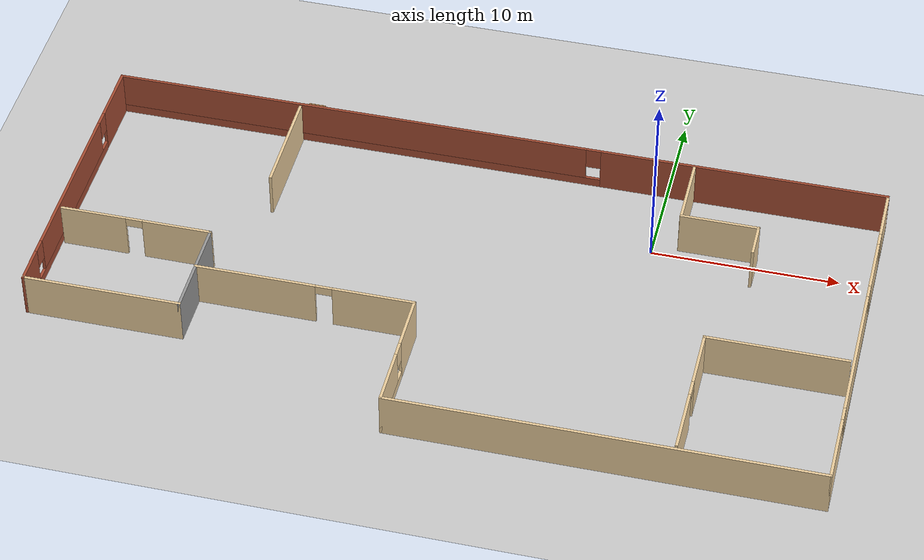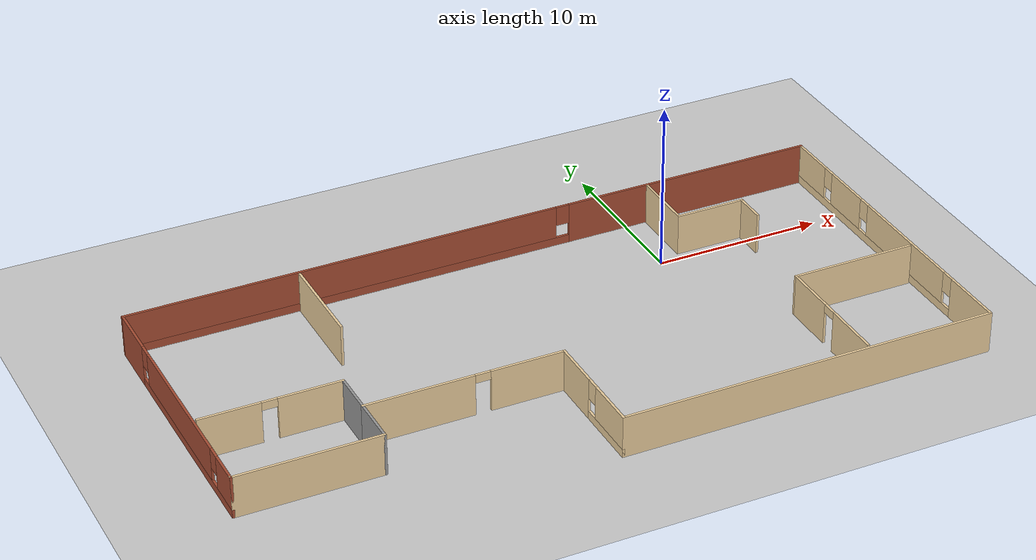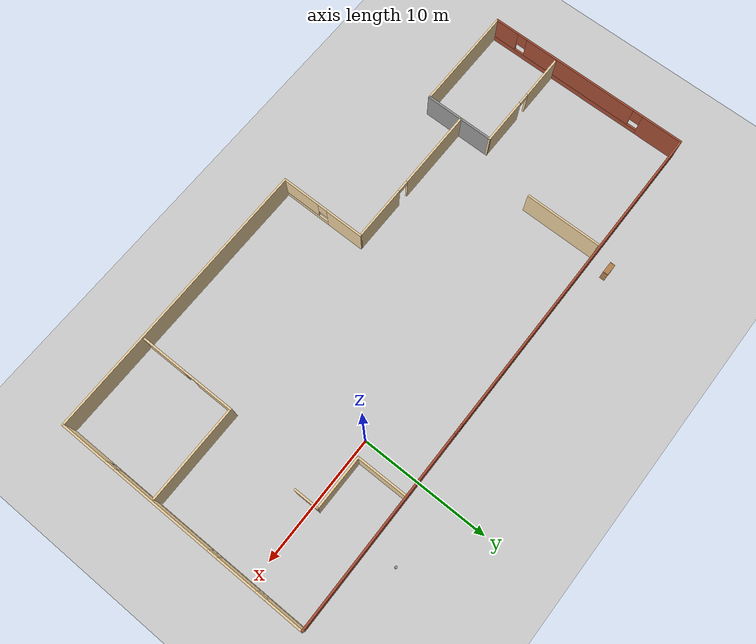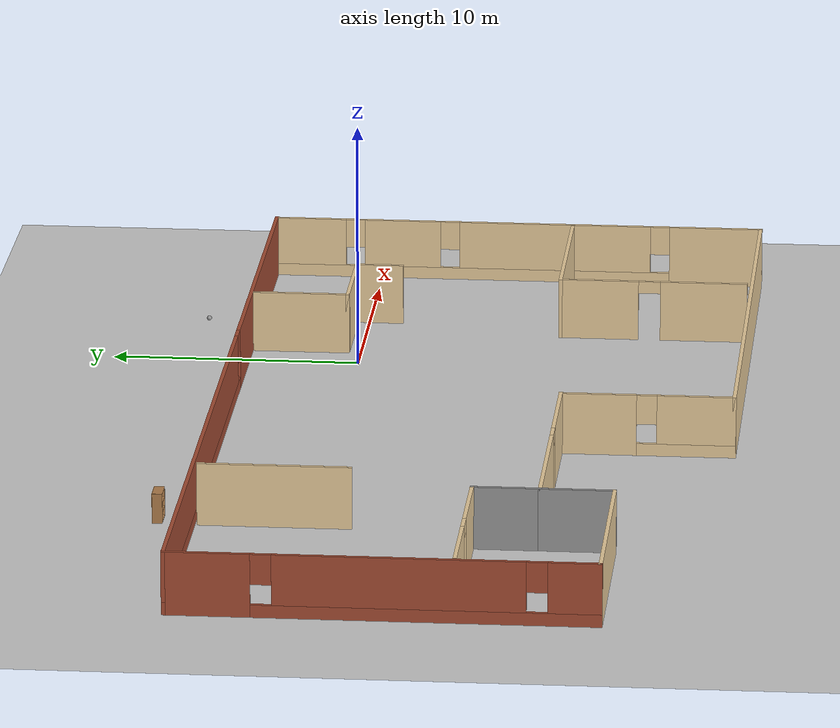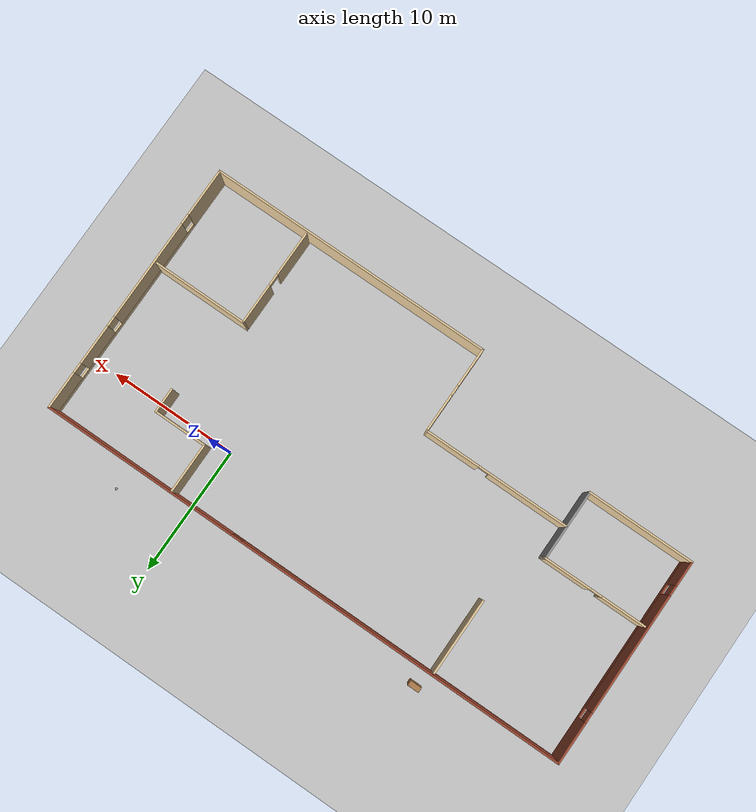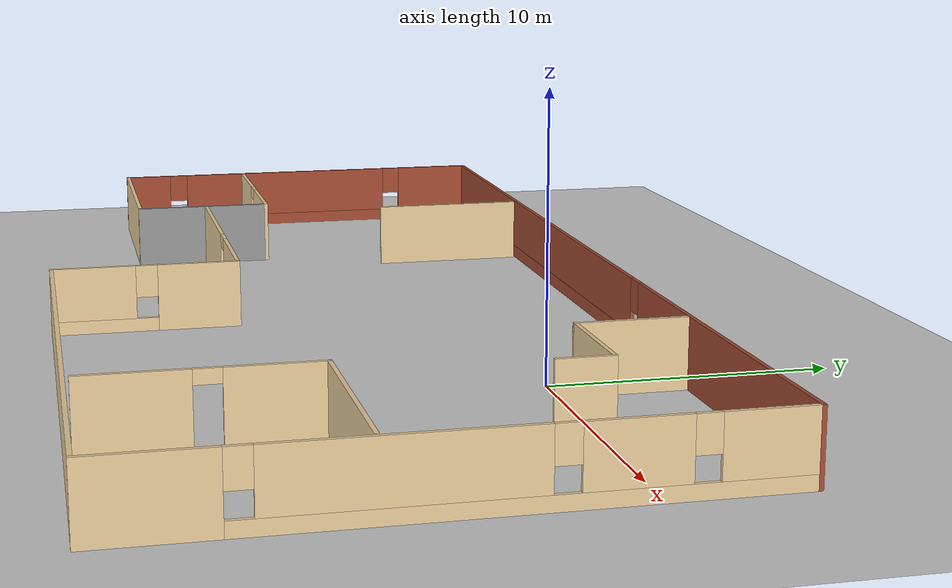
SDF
<sdf version="1.6">
 <world name="default">
  <plugin name="hello" filename="libhello.so"/>
  <light name="sun" type="directional">
   <pose>0 0 10 0 -0 0</pose>
   <diffuse>0.8 0.8 0.8 1</diffuse>
   <specular>0.2 0.2 0.2 1</specular>
   <attenuation>
    <range>1000</range>
    <constant>0.9</constant>
    <linear>0.01</linear>
    <quadratic>0.001</quadratic>
   </attenuation>
   <direction>-0.5 0.1 -0.9</direction>
  </light>
  <model name="ground_plane">
   <static>1</static>
   <link name="link">
    <collision name="collision">
     <geometry><plane><normal>0 0 1</normal><size>100 100</size></plane></geometry>
     <surface>
      <contact><collide_bitmask>65535</collide_bitmask></contact>
      <friction><ode><mu>100</mu><mu2>50</mu2></ode></friction>
     </surface>
    </collision>
    <visual name="visual">
     <cast_shadows>0</cast_shadows>
     <geometry><plane><normal>0 0 1</normal><size>100 100</size></plane></geometry>
     <material>
      <script><uri>file://media/materials/scripts/gazebo.material</uri><name>Gazebo/Grey</name></script>
     </material>
    </visual>
   </link>
  </model>
  <gravity>0 0 -9.8</gravity>
  <magnetic_field>6e-06 2.3e-05 -4.2e-05</magnetic_field>
  <atmosphere type="adiabatic"/>
  <physics name="default_physics" default="0" type="ode">
   <max_step_size>0.001</max_step_size>
   <real_time_factor>1</real_time_factor>
   <real_time_update_rate>1000</real_time_update_rate>
  </physics>
  <scene><ambient>0.4 0.4 0.4 1</ambient><background>0.7 0.7 0.7 1</background><shadows>1</shadows></scene>
  <spherical_coordinates>
   <surface_model>EARTH_WGS84</surface_model>
   <latitude_deg>0</latitude_deg>
   <longitude_deg>0</longitude_deg>
   <elevation>0</elevation>
   <heading_deg>0</heading_deg>
  </spherical_coordinates>
  <light name="user_spot_light_0" type="spot">
   <pose>-0.169522 -0.095019 1 0 -0 0</pose>
   <diffuse>0.5 0.5 0.5 1</diffuse>
   <specular>0.1 0.1 0.1 1</specular>
   <direction>0 0 -1</direction>
   <attenuation>
    <range>20</range>
    <constant>0.5</constant>
    <linear>0.01</linear>
    <quadratic>0.001</quadratic>
   </attenuation>
   <cast_shadows>0</cast_shadows>
   <spot><inner_angle>0.6</inner_angle><outer_angle>1</outer_angle><falloff>1</falloff></spot>
  </light>
  <model name="building">
   <pose>-9.42442 -5.66332 0 0 -0 0</pose>
   <link name="Wall_0">
    <pose>-21.15 2 0 0 0 -1.5708</pose>
    <visual name="Wall_0_Visual_0">
     <pose>-6.58308 0 1.25 0 -0 0</pose>
     <geometry><box><size>3.33383 0.15 2.5</size></box></geometry>
     <material>
      <script><uri>file://media/materials/scripts/gazebo.material</uri><name>Gazebo/Bricks</name></script>
      <ambient>1 1 1 1</ambient>
     </material>
     <meta><layer>0</layer></meta>
    </visual>
    <collision name="Wall_0_Collision_0">
     <geometry><box><size>3.33383 0.15 2.5</size></box></geometry>
     <pose>-6.58308 0 1.25 0 -0 0</pose>
    </collision>
    <visual name="Wall_0_Visual_1">
     <pose>1.66691 0 0.25 0 -0 0</pose>
     <geometry><box><size>13.1662 0.15 0.5</size></box></geometry>
     <material>
      <script><uri>file://media/materials/scripts/gazebo.material</uri><name>Gazebo/Bricks</name></script>
      <ambient>1 1 1 1</ambient>
     </material>
     <meta><layer>0</layer></meta>
    </visual>
    <collision name="Wall_0_Collision_1">
     <geometry><box><size>13.1662 0.15 0.5</size></box></geometry>
     <pose>1.66691 0 0.25 0 -0 0</pose>
    </collision>
    <visual name="Wall_0_Visual_2">
     <pose>0.649236 0 1.5 0 -0 0</pose>
     <geometry><box><size>9.53081 0.15 2</size></box></geometry>
     <material>
      <script><uri>file://media/materials/scripts/gazebo.material</uri><name>Gazebo/Bricks</name></script>
      <ambient>1 1 1 1</ambient>
     </material>
     <meta><layer>0</layer></meta>
    </visual>
    <collision name="Wall_0_Collision_2">
     <geometry><box><size>9.53081 0.15 2</size></box></geometry>
     <pose>0.649236 0 1.5 0 -0 0</pose>
    </collision>
    <visual name="Wall_0_Visual_3">
     <pose>7.23232 0 1.5 0 -0 0</pose>
     <geometry><box><size>2.03536 0.15 2</size></box></geometry>
     <material>
      <script><uri>file://media/materials/scripts/gazebo.material</uri><name>Gazebo/Bricks</name></script>
      <ambient>1 1 1 1</ambient>
     </material>
     <meta><layer>0</layer></meta>
    </visual>
    <collision name="Wall_0_Collision_3">
     <geometry><box><size>2.03536 0.15 2</size></box></geometry>
     <pose>7.23232 0 1.5 0 -0 0</pose>
    </collision>
    <visual name="Wall_0_Visual_4">
     <pose>-4.51617 0 1.9 0 -0 0</pose>
     <geometry><box><size>0.8 0.15 1.2</size></box></geometry>
     <material>
      <script><uri>file://media/materials/scripts/gazebo.material</uri><name>Gazebo/Bricks</name></script>
      <ambient>1 1 1 1</ambient>
     </material>
     <meta><layer>0</layer></meta>
    </visual>
    <collision name="Wall_0_Collision_4">
     <geometry><box><size>0.8 0.15 1.2</size></box></geometry>
     <pose>-4.51617 0 1.9 0 -0 0</pose>
    </collision>
    <visual name="Wall_0_Visual_5">
     <pose>5.81464 0 1.9 0 -0 0</pose>
     <geometry><box><size>0.8 0.15 1.2</size></box></geometry>
     <material>
      <script><uri>file://media/materials/scripts/gazebo.material</uri><name>Gazebo/Bricks</name></script>
      <ambient>1 1 1 1</ambient>
     </material>
     <meta><layer>0</layer></meta>
    </visual>
    <collision name="Wall_0_Collision_5">
     <geometry><box><size>0.8 0.15 1.2</size></box></geometry>
     <pose>5.81464 0 1.9 0 -0 0</pose>
    </collision>
   </link>
   <link name="Wall_1">
    <collision name="Wall_1_Collision">
     <geometry><box><size>8.5 0.15 2.5</size></box></geometry>
     <pose>0 0 1.25 0 -0 0</pose>
    </collision>
    <visual name="Wall_1_Visual">
     <pose>0 0 1.25 0 -0 0</pose>
     <geometry><box><size>8.5 0.15 2.5</size></box></geometry>
     <material>
      <script><uri>file://media/materials/scripts/gazebo.material</uri><name>Gazebo/Grey</name></script>
      <ambient>0.921569 0.807843 0.615686 1</ambient>
     </material>
     <meta><layer>0</layer></meta>
    </visual>
    <pose>-16.975 -6.175 0 0 -0 0</pose>
   </link>
   <link name="Wall_10">
    <collision name="Wall_10_Collision">
     <geometry><box><size>4.25 0.15 2.5</size></box></geometry>
     <pose>0 0 1.25 0 -0 0</pose>
    </collision>
    <visual name="Wall_10_Visual">
     <pose>0 0 1.25 0 -0 0</pose>
     <geometry><box><size>4.25 0.15 2.5</size></box></geometry>
     <material>
      <script><uri>file://media/materials/scripts/gazebo.material</uri><name>Gazebo/Grey</name></script>
      <ambient>0.921569 0.807843 0.615686 1</ambient>
     </material>
     <meta><layer>0</layer></meta>
    </visual>
    <pose>12.861 6.21739 0 0 -0 0</pose>
   </link>
   <link name="Wall_11">
    <collision name="Wall_11_Collision">
     <geometry><box><size>2 0.15 2.5</size></box></geometry>
     <pose>0 0 1.25 0 -0 0</pose>
    </collision>
    <visual name="Wall_11_Visual">
     <pose>0 0 1.25 0 -0 0</pose>
     <geometry><box><size>2 0.15 2.5</size></box></geometry>
     <material>
      <script><uri>file://media/materials/scripts/gazebo.material</uri><name>Gazebo/Grey</name></script>
      <ambient>0.921569 0.807843 0.615686 1</ambient>
     </material>
     <meta><layer>0</layer></meta>
    </visual>
    <pose>14.911 5.29239 0 0 0 -1.5708</pose>
   </link>
   <link name="Wall_13">
    <collision name="Wall_13_Collision">
     <geometry><box><size>7.5 0.15 2.5</size></box></geometry>
     <pose>0 0 1.25 0 -0 0</pose>
    </collision>
    <visual name="Wall_13_Visual">
     <pose>0 0 1.25 0 -0 0</pose>
     <geometry><box><size>7.5 0.15 2.5</size></box></geometry>
     <material>
      <script><uri>file://media/materials/scripts/gazebo.material</uri><name>Gazebo/Grey</name></script>
      <ambient>0.921569 0.807843 0.615686 1</ambient>
     </material>
     <meta><layer>0</layer></meta>
    </visual>
    <pose>17.2515 -2.30807 0 0 -0 3.14159</pose>
   </link>
   <link name="Wall_14">
    <pose>13.5765 -6.10807 0 0 0 -1.5708</pose>
    <visual name="Wall_14_Visual_0">
     <pose>-2.23308 0 1.25 0 -0 0</pose>
     <geometry><box><size>3.28383 0.15 2.5</size></box></geometry>
     <material>
      <script><uri>file://media/materials/scripts/gazebo.material</uri><name>Gazebo/Grey</name></script>
      <ambient>0.921569 0.807843 0.615686 1</ambient>
     </material>
     <meta><layer>0</layer></meta>
    </visual>
    <collision name="Wall_14_Collision_0">
     <geometry><box><size>3.28383 0.15 2.5</size></box></geometry>
     <pose>-2.23308 0 1.25 0 -0 0</pose>
    </collision>
    <visual name="Wall_14_Visual_1">
     <pose>2.09192 0 1.25 0 -0 0</pose>
     <geometry><box><size>3.56617 0.15 2.5</size></box></geometry>
     <material>
      <script><uri>file://media/materials/scripts/gazebo.material</uri><name>Gazebo/Grey</name></script>
      <ambient>0.921569 0.807843 0.615686 1</ambient>
     </material>
     <meta><layer>0</layer></meta>
    </visual>
    <collision name="Wall_14_Collision_1">
     <geometry><box><size>3.56617 0.15 2.5</size></box></geometry>
     <pose>2.09192 0 1.25 0 -0 0</pose>
    </collision>
    <visual name="Wall_14_Visual_2">
     <pose>-0.141171 0 2.25 0 -0 0</pose>
     <geometry><box><size>0.9 0.15 0.5</size></box></geometry>
     <material>
      <script><uri>file://media/materials/scripts/gazebo.material</uri><name>Gazebo/Grey</name></script>
      <ambient>0.921569 0.807843 0.615686 1</ambient>
     </material>
     <meta><layer>0</layer></meta>
    </visual>
    <collision name="Wall_14_Collision_2">
     <geometry><box><size>0.9 0.15 0.5</size></box></geometry>
     <pose>-0.141171 0 2.25 0 -0 0</pose>
    </collision>
   </link>
   <link name="Wall_18">
    <collision name="Wall_18_Collision">
     <geometry><box><size>2.75 0.15 2.5</size></box></geometry>
     <pose>0 0 1.25 0 -0 0</pose>
    </collision>
    <visual name="Wall_18_Visual">
     <pose>0 0 1.25 0 -0 0</pose>
     <geometry><box><size>2.75 0.15 2.5</size></box></geometry>
     <material>
      <script><uri>file://media/materials/scripts/gazebo.material</uri><name>Gazebo/Grey</name></script>
      <ambient>1 1 1 1</ambient>
     </material>
     <meta><layer>0</layer></meta>
    </visual>
    <pose>-12.8 -2.025 0 0 -0 1.5708</pose>
   </link>
   <link name="Wall_19">
    <pose>-16.85 -0.725 0 0 -0 3.14159</pose>
    <visual name="Wall_19_Visual_0">
     <pose>-2.23595 0 1.25 0 -0 0</pose>
     <geometry><box><size>3.77811 0.15 2.5</size></box></geometry>
     <material>
      <script><uri>file://media/materials/scripts/gazebo.material</uri><name>Gazebo/Grey</name></script>
      <ambient>0.921569 0.807843 0.615686 1</ambient>
     </material>
     <meta><layer>0</layer></meta>
    </visual>
    <collision name="Wall_19_Collision_0">
     <geometry><box><size>3.77811 0.15 2.5</size></box></geometry>
     <pose>-2.23595 0 1.25 0 -0 0</pose>
    </collision>
    <visual name="Wall_19_Visual_1">
     <pose>2.33905 0 1.25 0 -0 0</pose>
     <geometry><box><size>3.57189 0.15 2.5</size></box></geometry>
     <material>
      <script><uri>file://media/materials/scripts/gazebo.material</uri><name>Gazebo/Grey</name></script>
      <ambient>0.921569 0.807843 0.615686 1</ambient>
     </material>
     <meta><layer>0</layer></meta>
    </visual>
    <collision name="Wall_19_Collision_1">
     <geometry><box><size>3.57189 0.15 2.5</size></box></geometry>
     <pose>2.33905 0 1.25 0 -0 0</pose>
    </collision>
    <visual name="Wall_19_Visual_2">
     <pose>0.103107 0 2.25 0 -0 0</pose>
     <geometry><box><size>0.9 0.15 0.5</size></box></geometry>
     <material>
      <script><uri>file://media/materials/scripts/gazebo.material</uri><name>Gazebo/Grey</name></script>
      <ambient>0.921569 0.807843 0.615686 1</ambient>
     </material>
     <meta><layer>0</layer></meta>
    </visual>
    <collision name="Wall_19_Collision_2">
     <geometry><box><size>0.9 0.15 0.5</size></box></geometry>
     <pose>0.103107 0 2.25 0 -0 0</pose>
    </collision>
   </link>
   <link name="Wall_2">
    <collision name="Wall_2_Collision">
     <geometry><box><size>3 0.15 2.5</size></box></geometry>
     <pose>0 0 1.25 0 -0 0</pose>
    </collision>
    <visual name="Wall_2_Visual">
     <pose>0 0 1.25 0 -0 0</pose>
     <geometry><box><size>3 0.15 2.5</size></box></geometry>
     <material>
      <script><uri>file://media/materials/scripts/gazebo.material</uri><name>Gazebo/Grey</name></script>
      <ambient>1 1 1 1</ambient>
     </material>
     <meta><layer>0</layer></meta>
    </visual>
    <pose>-12.8 -4.75 0 0 -0 1.5708</pose>
   </link>
   <link name="Wall_21">
    <collision name="Wall_21_Collision">
     <geometry><box><size>6 0.15 2.5</size></box></geometry>
     <pose>0 0 1.25 0 -0 0</pose>
    </collision>
    <visual name="Wall_21_Visual">
     <pose>0 0 1.25 0 -0 0</pose>
     <geometry><box><size>6 0.15 2.5</size></box></geometry>
     <material>
      <script><uri>file://media/materials/scripts/gazebo.material</uri><name>Gazebo/Grey</name></script>
      <ambient>0.921569 0.807843 0.615686 1</ambient>
     </material>
     <meta><layer>0</layer></meta>
    </visual>
    <pose>-10.9268 7.03477 0 0 0 -1.5708</pose>
   </link>
   <link name="Wall_3">
    <pose>-7 -3.325 0 0 -0 0</pose>
    <visual name="Wall_3_Visual_0">
     <pose>-2.65081 0 1.25 0 -0 0</pose>
     <geometry><box><size>6.44838 0.15 2.5</size></box></geometry>
     <material>
      <script><uri>file://media/materials/scripts/gazebo.material</uri><name>Gazebo/Grey</name></script>
      <ambient>0.921569 0.807843 0.615686 1</ambient>
     </material>
     <meta><layer>0</layer></meta>
    </visual>
    <collision name="Wall_3_Collision_0">
     <geometry><box><size>6.44838 0.15 2.5</size></box></geometry>
     <pose>-2.65081 0 1.25 0 -0 0</pose>
    </collision>
    <visual name="Wall_3_Visual_1">
     <pose>3.67419 0 1.25 0 -0 0</pose>
     <geometry><box><size>4.40162 0.15 2.5</size></box></geometry>
     <material>
      <script><uri>file://media/materials/scripts/gazebo.material</uri><name>Gazebo/Grey</name></script>
      <ambient>0.921569 0.807843 0.615686 1</ambient>
     </material>
     <meta><layer>0</layer></meta>
    </visual>
    <collision name="Wall_3_Collision_1">
     <geometry><box><size>4.40162 0.15 2.5</size></box></geometry>
     <pose>3.67419 0 1.25 0 -0 0</pose>
    </collision>
    <visual name="Wall_3_Visual_2">
     <pose>1.02338 0 2.25 0 -0 0</pose>
     <geometry><box><size>0.9 0.15 0.5</size></box></geometry>
     <material>
      <script><uri>file://media/materials/scripts/gazebo.material</uri><name>Gazebo/Grey</name></script>
      <ambient>0.921569 0.807843 0.615686 1</ambient>
     </material>
     <meta><layer>0</layer></meta>
    </visual>
    <collision name="Wall_3_Collision_2">
     <geometry><box><size>0.9 0.15 0.5</size></box></geometry>
     <pose>1.02338 0 2.25 0 -0 0</pose>
    </collision>
   </link>
   <link name="Wall_4">
    <pose>-1.2 -6.75 0 0 0 -1.5708</pose>
    <visual name="Wall_4_Visual_0">
     <pose>-1.96491 0 1.25 0 -0 0</pose>
     <geometry><box><size>3.07018 0.15 2.5</size></box></geometry>
     <material>
      <script><uri>file://media/materials/scripts/gazebo.material</uri><name>Gazebo/Grey</name></script>
      <ambient>0.921569 0.807843 0.615686 1</ambient>
     </material>
     <meta><layer>0</layer></meta>
    </visual>
    <collision name="Wall_4_Collision_0">
     <geometry><box><size>3.07018 0.15 2.5</size></box></geometry>
     <pose>-1.96491 0 1.25 0 -0 0</pose>
    </collision>
    <visual name="Wall_4_Visual_1">
     <pose>1.53509 0 0.25 0 -0 0</pose>
     <geometry><box><size>3.92982 0.15 0.5</size></box></geometry>
     <material>
      <script><uri>file://media/materials/scripts/gazebo.material</uri><name>Gazebo/Grey</name></script>
      <ambient>0.921569 0.807843 0.615686 1</ambient>
     </material>
     <meta><layer>0</layer></meta>
    </visual>
    <collision name="Wall_4_Collision_1">
     <geometry><box><size>3.92982 0.15 0.5</size></box></geometry>
     <pose>1.53509 0 0.25 0 -0 0</pose>
    </collision>
    <visual name="Wall_4_Visual_2">
     <pose>1.93509 0 1.5 0 -0 0</pose>
     <geometry><box><size>3.12981 0.15 2</size></box></geometry>
     <material>
      <script><uri>file://media/materials/scripts/gazebo.material</uri><name>Gazebo/Grey</name></script>
      <ambient>0.921569 0.807843 0.615686 1</ambient>
     </material>
     <meta><layer>0</layer></meta>
    </visual>
    <collision name="Wall_4_Collision_2">
     <geometry><box><size>3.12981 0.15 2</size></box></geometry>
     <pose>1.93509 0 1.5 0 -0 0</pose>
    </collision>
    <visual name="Wall_4_Visual_3">
     <pose>-0.029815 0 1.9 0 -0 0</pose>
     <geometry><box><size>0.8 0.15 1.2</size></box></geometry>
     <material>
      <script><uri>file://media/materials/scripts/gazebo.material</uri><name>Gazebo/Grey</name></script>
      <ambient>0.921569 0.807843 0.615686 1</ambient>
     </material>
     <meta><layer>0</layer></meta>
    </visual>
    <collision name="Wall_4_Collision_3">
     <geometry><box><size>0.8 0.15 1.2</size></box></geometry>
     <pose>-0.029815 0 1.9 0 -0 0</pose>
    </collision>
   </link>
   <link name="Wall_5">
    <collision name="Wall_5_Collision">
     <geometry><box><size>22.5 0.15 2.5</size></box></geometry>
     <pose>0 0 1.25 0 -0 0</pose>
    </collision>
    <visual name="Wall_5_Visual">
     <pose>0 0 1.25 0 -0 0</pose>
     <geometry><box><size>22.5 0.15 2.5</size></box></geometry>
     <material>
      <script><uri>file://media/materials/scripts/gazebo.material</uri><name>Gazebo/Grey</name></script>
      <ambient>0.921569 0.807843 0.615686 1</ambient>
     </material>
     <meta><layer>0</layer></meta>
    </visual>
    <pose>9.975 -10.175 0 0 -0 0</pose>
   </link>
   <link name="Wall_6">
    <pose>21.15 0 0 0 -0 1.5708</pose>
    <visual name="Wall_6_Visual_0">
     <pose>-8.30845 0 1.25 0 -0 0</pose>
     <geometry><box><size>3.8831 0.15 2.5</size></box></geometry>
     <material>
      <script><uri>file://media/materials/scripts/gazebo.material</uri><name>Gazebo/Grey</name></script>
      <ambient>0.921569 0.807843 0.615686 1</ambient>
     </material>
     <meta><layer>0</layer></meta>
    </visual>
    <collision name="Wall_6_Collision_0">
     <geometry><box><size>3.8831 0.15 2.5</size></box></geometry>
     <pose>-8.30845 0 1.25 0 -0 0</pose>
    </collision>
    <visual name="Wall_6_Visual_1">
     <pose>1.94155 0 0.25 0 -0 0</pose>
     <geometry><box><size>16.6169 0.15 0.5</size></box></geometry>
     <material>
      <script><uri>file://media/materials/scripts/gazebo.material</uri><name>Gazebo/Grey</name></script>
      <ambient>0.921569 0.807843 0.615686 1</ambient>
     </material>
     <meta><layer>0</layer></meta>
    </visual>
    <collision name="Wall_6_Collision_1">
     <geometry><box><size>16.6169 0.15 0.5</size></box></geometry>
     <pose>1.94155 0 0.25 0 -0 0</pose>
    </collision>
    <visual name="Wall_6_Visual_2">
     <pose>-1.55478 0 1.5 0 -0 0</pose>
     <geometry><box><size>8.02424 0.15 2</size></box></geometry>
     <material>
      <script><uri>file://media/materials/scripts/gazebo.material</uri><name>Gazebo/Grey</name></script>
      <ambient>0.921569 0.807843 0.615686 1</ambient>
     </material>
     <meta><layer>0</layer></meta>
    </visual>
    <collision name="Wall_6_Collision_2">
     <geometry><box><size>8.02424 0.15 2</size></box></geometry>
     <pose>-1.55478 0 1.5 0 -0 0</pose>
    </collision>
    <visual name="Wall_6_Visual_3">
     <pose>4.84817 0 1.5 0 -0 0</pose>
     <geometry><box><size>3.18167 0.15 2</size></box></geometry>
     <material>
      <script><uri>file://media/materials/scripts/gazebo.material</uri><name>Gazebo/Grey</name></script>
      <ambient>0.921569 0.807843 0.615686 1</ambient>
     </material>
     <meta><layer>0</layer></meta>
    </visual>
    <collision name="Wall_6_Collision_3">
     <geometry><box><size>3.18167 0.15 2</size></box></geometry>
     <pose>4.84817 0 1.5 0 -0 0</pose>
    </collision>
    <visual name="Wall_6_Visual_4">
     <pose>8.7445 0 1.5 0 -0 0</pose>
     <geometry><box><size>3.01099 0.15 2</size></box></geometry>
     <material>
      <script><uri>file://media/materials/scripts/gazebo.material</uri><name>Gazebo/Grey</name></script>
      <ambient>0.921569 0.807843 0.615686 1</ambient>
     </material>
     <meta><layer>0</layer></meta>
    </visual>
    <collision name="Wall_6_Collision_4">
     <geometry><box><size>3.01099 0.15 2</size></box></geometry>
     <pose>8.7445 0 1.5 0 -0 0</pose>
    </collision>
    <visual name="Wall_6_Visual_5">
     <pose>-5.9669 0 1.9 0 -0 0</pose>
     <geometry><box><size>0.8 0.15 1.2</size></box></geometry>
     <material>
      <script><uri>file://media/materials/scripts/gazebo.material</uri><name>Gazebo/Grey</name></script>
      <ambient>0.921569 0.807843 0.615686 1</ambient>
     </material>
     <meta><layer>0</layer></meta>
    </visual>
    <collision name="Wall_6_Collision_5">
     <geometry><box><size>0.8 0.15 1.2</size></box></geometry>
     <pose>-5.9669 0 1.9 0 -0 0</pose>
    </collision>
    <visual name="Wall_6_Visual_6">
     <pose>2.85734 0 1.9 0 -0 0</pose>
     <geometry><box><size>0.8 0.15 1.2</size></box></geometry>
     <material>
      <script><uri>file://media/materials/scripts/gazebo.material</uri><name>Gazebo/Grey</name></script>
      <ambient>0.921569 0.807843 0.615686 1</ambient>
     </material>
     <meta><layer>0</layer></meta>
    </visual>
    <collision name="Wall_6_Collision_6">
     <geometry><box><size>0.8 0.15 1.2</size></box></geometry>
     <pose>2.85734 0 1.9 0 -0 0</pose>
    </collision>
    <visual name="Wall_6_Visual_7">
     <pose>6.83901 0 1.9 0 -0 0</pose>
     <geometry><box><size>0.8 0.15 1.2</size></box></geometry>
     <material>
      <script><uri>file://media/materials/scripts/gazebo.material</uri><name>Gazebo/Grey</name></script>
      <ambient>0.921569 0.807843 0.615686 1</ambient>
     </material>
     <meta><layer>0</layer></meta>
    </visual>
    <collision name="Wall_6_Collision_7">
     <geometry><box><size>0.8 0.15 1.2</size></box></geometry>
     <pose>6.83901 0 1.9 0 -0 0</pose>
    </collision>
   </link>
   <link name="Wall_7">
    <pose>0 10.175 0 0 -0 3.14159</pose>
    <visual name="Wall_7_Visual_0">
     <pose>-13.4739 0 1.25 0 -0 0</pose>
     <geometry><box><size>15.5023 0.15 2.5</size></box></geometry>
     <material>
      <script><uri>file://media/materials/scripts/gazebo.material</uri><name>Gazebo/Bricks</name></script>
      <ambient>1 1 1 1</ambient>
     </material>
     <meta><layer>0</layer></meta>
    </visual>
    <collision name="Wall_7_Collision_0">
     <geometry><box><size>15.5023 0.15 2.5</size></box></geometry>
     <pose>-13.4739 0 1.25 0 -0 0</pose>
    </collision>
    <visual name="Wall_7_Visual_1">
     <pose>7.75115 0 0.25 0 -0 0</pose>
     <geometry><box><size>26.9477 0.15 0.5</size></box></geometry>
     <material>
      <script><uri>file://media/materials/scripts/gazebo.material</uri><name>Gazebo/Bricks</name></script>
      <ambient>1 1 1 1</ambient>
     </material>
     <meta><layer>0</layer></meta>
    </visual>
    <collision name="Wall_7_Collision_1">
     <geometry><box><size>26.9477 0.15 0.5</size></box></geometry>
     <pose>7.75115 0 0.25 0 -0 0</pose>
    </collision>
    <visual name="Wall_7_Visual_2">
     <pose>8.15114 0 1.5 0 -0 0</pose>
     <geometry><box><size>26.1477 0.15 2</size></box></geometry>
     <material>
      <script><uri>file://media/materials/scripts/gazebo.material</uri><name>Gazebo/Bricks</name></script>
      <ambient>1 1 1 1</ambient>
     </material>
     <meta><layer>0</layer></meta>
    </visual>
    <collision name="Wall_7_Collision_2">
     <geometry><box><size>26.1477 0.15 2</size></box></geometry>
     <pose>8.15114 0 1.5 0 -0 0</pose>
    </collision>
    <visual name="Wall_7_Visual_3">
     <pose>-5.32271 0 1.9 0 -0 0</pose>
     <geometry><box><size>0.8 0.15 1.2</size></box></geometry>
     <material>
      <script><uri>file://media/materials/scripts/gazebo.material</uri><name>Gazebo/Bricks</name></script>
      <ambient>1 1 1 1</ambient>
     </material>
     <meta><layer>0</layer></meta>
    </visual>
    <collision name="Wall_7_Collision_3">
     <geometry><box><size>0.8 0.15 1.2</size></box></geometry>
     <pose>-5.32271 0 1.9 0 -0 0</pose>
    </collision>
   </link>
   <link name="Wall_9">
    <collision name="Wall_9_Collision">
     <geometry><box><size>4 0.15 2.5</size></box></geometry>
     <pose>0 0 1.25 0 -0 0</pose>
    </collision>
    <visual name="Wall_9_Visual">
     <pose>0 0 1.25 0 -0 0</pose>
     <geometry><box><size>4 0.15 2.5</size></box></geometry>
     <material>
      <script><uri>file://media/materials/scripts/gazebo.material</uri><name>Gazebo/Grey</name></script>
      <ambient>0.921569 0.807843 0.615686 1</ambient>
     </material>
     <meta><layer>0</layer></meta>
    </visual>
    <pose>10.811 8.14239 0 0 0 -1.5708</pose>
   </link>
   <static>1</static>
  </model>
  <model name="bookshelf">
   <static>1</static>
   <link name="link">
    <inertial><mass>1</mass></inertial>
    <collision name="back">
     <pose>0 0.005 0.6 0 -0 0</pose>
     <geometry><box><size>0.9 0.01 1.2</size></box></geometry>
    </collision>
    <visual name="visual1">
     <pose>0 0.005 0.6 0 -0 0</pose>
     <geometry><box><size>0.9 0.01 1.2</size></box></geometry>
     <material>
      <script><uri>file://media/materials/scripts/gazebo.material</uri><name>Gazebo/Wood</name></script>
     </material>
    </visual>
    <collision name="left_side">
     <pose>0.45 -0.195 0.6 0 -0 0</pose>
     <geometry><box><size>0.02 0.4 1.2</size></box></geometry>
    </collision>
    <visual name="visual2">
     <pose>0.45 -0.195 0.6 0 -0 0</pose>
     <geometry><box><size>0.02 0.4 1.2</size></box></geometry>
     <material>
      <script><uri>file://media/materials/scripts/gazebo.material</uri><name>Gazebo/Wood</name></script>
     </material>
    </visual>
    <collision name="right_side">
     <pose>-0.45 -0.195 0.6 0 -0 0</pose>
     <geometry><box><size>0.02 0.4 1.2</size></box></geometry>
    </collision>
    <visual name="visual3">
     <pose>-0.45 -0.195 0.6 0 -0 0</pose>
     <geometry><box><size>0.02 0.4 1.2</size></box></geometry>
     <material>
      <script><uri>file://media/materials/scripts/gazebo.material</uri><name>Gazebo/Wood</name></script>
     </material>
    </visual>
    <collision name="bottom">
     <pose>0 -0.195 0.03 0 -0 0</pose>
     <geometry><box><size>0.88 0.4 0.06</size></box></geometry>
    </collision>
    <visual name="visual4">
     <pose>0 -0.195 0.03 0 -0 0</pose>
     <geometry><box><size>0.88 0.4 0.06</size></box></geometry>
     <material>
      <script><uri>file://media/materials/scripts/gazebo.material</uri><name>Gazebo/Wood</name></script>
     </material>
    </visual>
    <collision name="top">
     <pose>0 -0.195 1.19 0 -0 0</pose>
     <geometry><box><size>0.88 0.4 0.02</size></box></geometry>
    </collision>
    <visual name="visual5">
     <pose>0 -0.195 1.19 0 -0 0</pose>
     <geometry><box><size>0.88 0.4 0.02</size></box></geometry>
     <material>
      <script><uri>file://media/materials/scripts/gazebo.material</uri><name>Gazebo/Wood</name></script>
     </material>
    </visual>
    <collision name="low_shelf">
     <pose>0 -0.195 0.43 0 -0 0</pose>
     <geometry><box><size>0.88 0.4 0.02</size></box></geometry>
    </collision>
    <visual name="visual6">
     <pose>0 -0.195 0.43 0 -0 0</pose>
     <geometry><box><size>0.88 0.4 0.02</size></box></geometry>
     <material>
      <script><uri>file://media/materials/scripts/gazebo.material</uri><name>Gazebo/Wood</name></script>
     </material>
    </visual>
    <collision name="high_shelf">
     <pose>0 -0.195 0.8 0 -0 0</pose>
     <geometry><box><size>0.88 0.4 0.02</size></box></geometry>
    </collision>
    <visual name="visual7">
     <pose>0 -0.195 0.8 0 -0 0</pose>
     <geometry><box><size>0.88 0.4 0.02</size></box></geometry>
     <material>
      <script><uri>file://media/materials/scripts/gazebo.material</uri><name>Gazebo/Wood</name></script>
     </material>
    </visual>
   </link>
   <pose>-19.9159 6.10787 0 0 -0 0</pose>
  </model>
  <model name="my_ball">
   <link name="link_0">
    <inertial>
     <mass>1</mass>
     <inertia><ixx>0.1</ixx><ixy>0</ixy><ixz>0</ixz><iyy>0.1</iyy><iyz>0</iyz><izz>0.1</izz></inertia>
    </inertial>
    <visual name="visual">
     <geometry><sphere><radius>0.1</radius></sphere></geometry>
     <material>
      <lighting>1</lighting>
      <script><uri>file://media/materials/scripts/gazebo.material</uri><name>Gazebo/Grey</name></script>
      <shader type="pixel"><normal_map>__default__</normal_map></shader>
      <ambient>1 1 1 1</ambient>
      <diffuse>1 1 1 1</diffuse>
      <specular>1 1 1 1</specular>
      <emissive>1 1 1 1</emissive>
     </material>
    </visual>
    <collision name="collision">
     <geometry><sphere><radius>0.1</radius></sphere></geometry>
     <surface>
      <friction>
       <ode><mu>1</mu><mu2>1</mu2><fdir1>0 0 0</fdir1><slip1>0</slip1><slip2>0</slip2></ode>
       <torsional>
        <coefficient>1</coefficient>
        <patch_radius>0</patch_radius>
        <surface_radius>0</surface_radius>
        <use_patch_radius>1</use_patch_radius>
        <ode><slip>0</slip></ode>
       </torsional>
      </friction>
      <bounce><restitution_coefficient>0</restitution_coefficient><threshold>1e+06</threshold></bounce>
      <contact>
       <collide_without_contact>0</collide_without_contact>
       <collide_without_contact_bitmask>1</collide_without_contact_bitmask>
       <collide_bitmask>1</collide_bitmask>
       <ode>
        <soft_cfm>0</soft_cfm>
        <soft_erp>0.2</soft_erp>
        <kp>1e+13</kp>
        <kd>1</kd>
        <max_vel>0.01</max_vel>
        <min_depth>0</min_depth>
       </ode>
       <bullet>
        <split_impulse>1</split_impulse>
        <split_impulse_penetration_threshold>-0.01</split_impulse_penetration_threshold>
        <soft_cfm>0</soft_cfm>
        <soft_erp>0.2</soft_erp>
        <kp>1e+13</kp>
        <kd>1</kd>
       </bullet>
      </contact>
     </surface>
    </collision>
   </link>
   <static>0</static>
   <pose>5.15849 6.66552 0.1 0 -0 0</pose>
  </model>
 </world>
</sdf>
